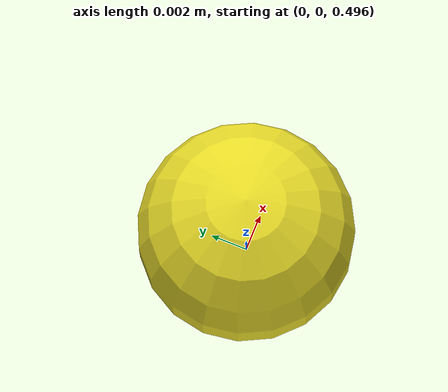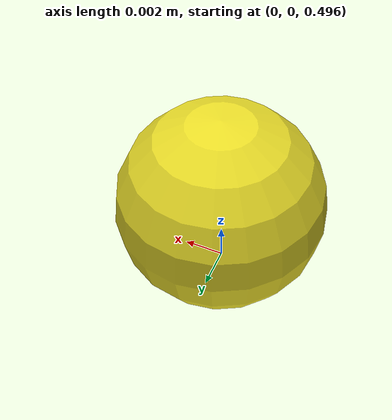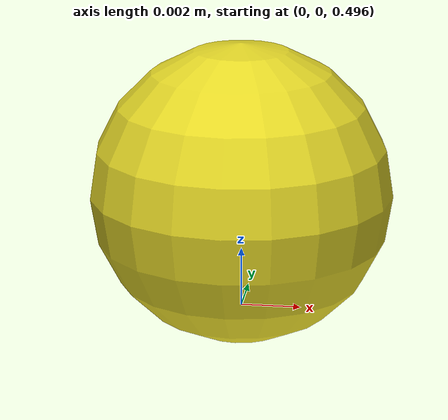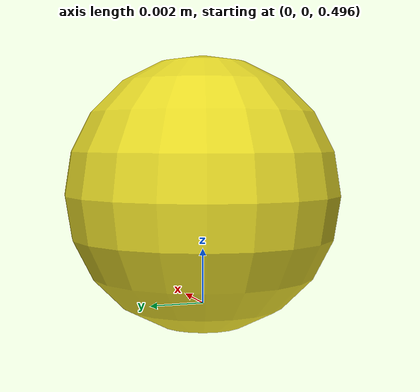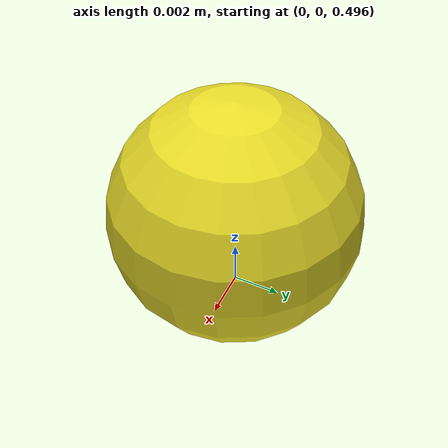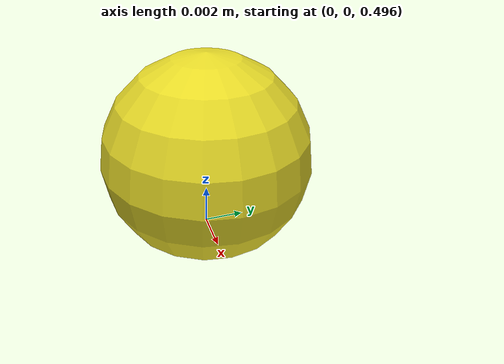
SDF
<?xml version='1.0'?>
<sdf version="1.4">
  <model name="MODEL_NAME">
    <pose>0 0 0.5 0 0 0</pose>
    <static>true</static>
    <link name="link">
      <inertial>
        <mass>1.0</mass>
        <inertia> <!-- inertias are tricky to compute -->
          <!-- http://gazebosim.org/tutorials?tut=inertia&cat=build_robot -->
          <ixx>0.0025</ixx>       <!-- for a box: ixx = 0.083 * mass * (y*y + z*z) -->
          <ixy>0.0</ixy>         <!-- for a box: ixy = 0 -->
          <ixz>0.0</ixz>         <!-- for a box: ixz = 0 -->
          <iyy>0.0025</iyy>       <!-- for a box: iyy = 0.083 * mass * (x*x + z*z) -->
          <iyz>0.0</iyz>         <!-- for a box: iyz = 0 -->
          <izz>0.0025</izz>       <!-- for a box: izz = 0.083 * mass * (x*x + y*y) -->
        </inertia>
      </inertial>
      <collision name="collision">
        <geometry>
          <sphere>
            <radius>0.005</radius>
          </sphere>
        </geometry>
      </collision>
      <visual name="visual">
        <geometry>
          <sphere>
            <radius>0.005</radius>
          </sphere>
        </geometry>
        <material><script><name>Gazebo/Yellow</name></script></material>
      </visual>
      <sensor name='my_contact' type='contact'>
        <contact>
          <collision>point_collision</collision>
        </contact>
      </sensor>
    </link>
  </model>
</sdf>
